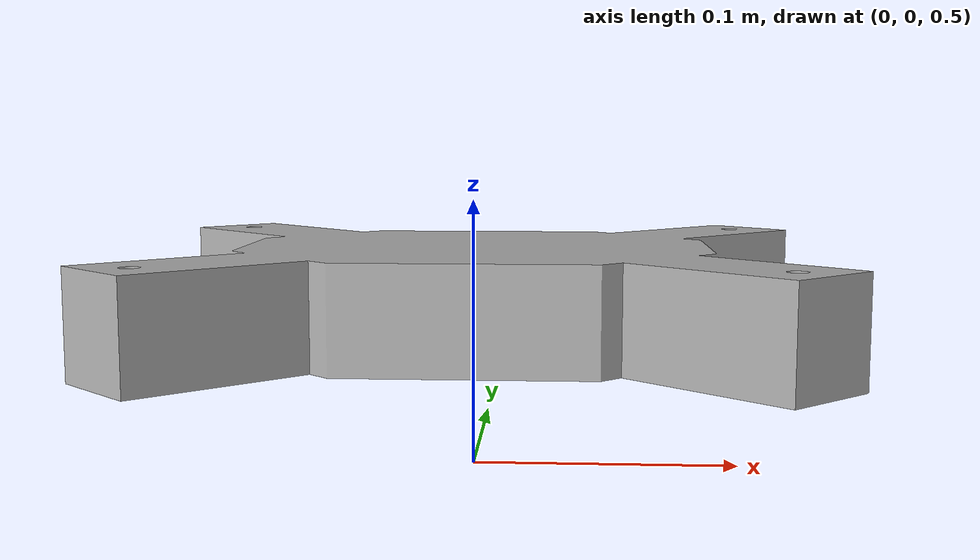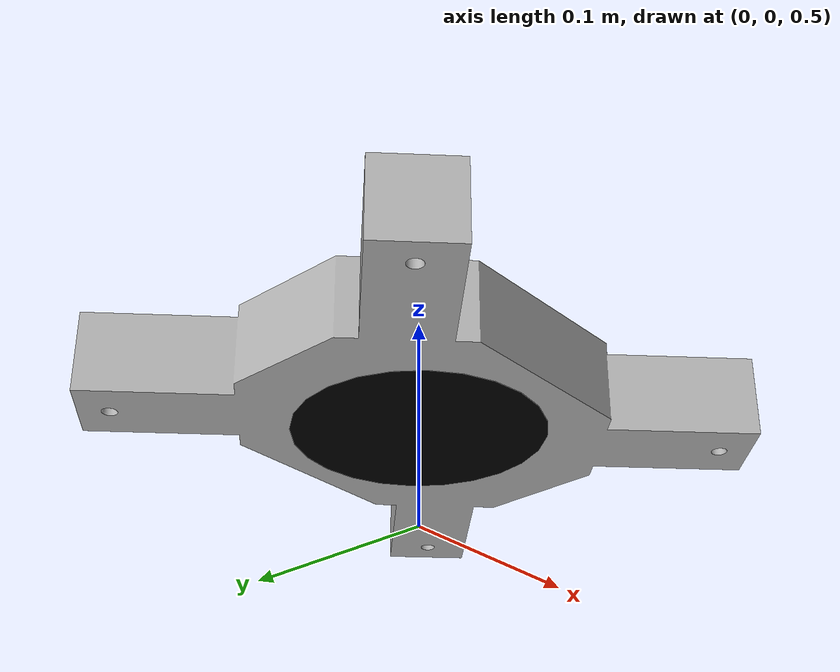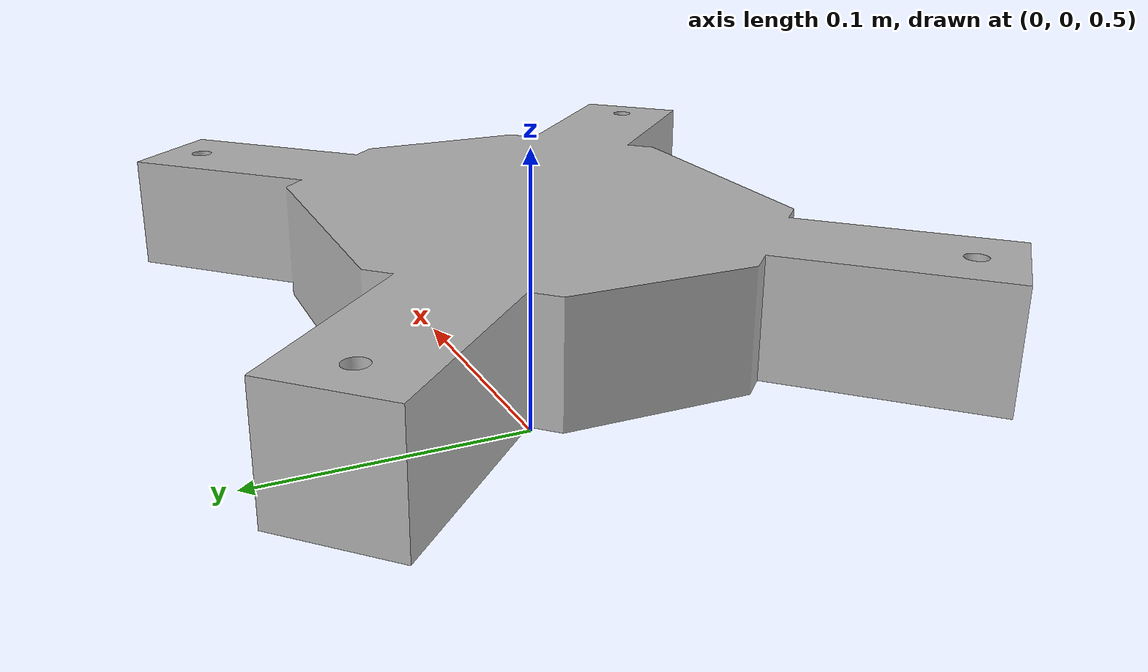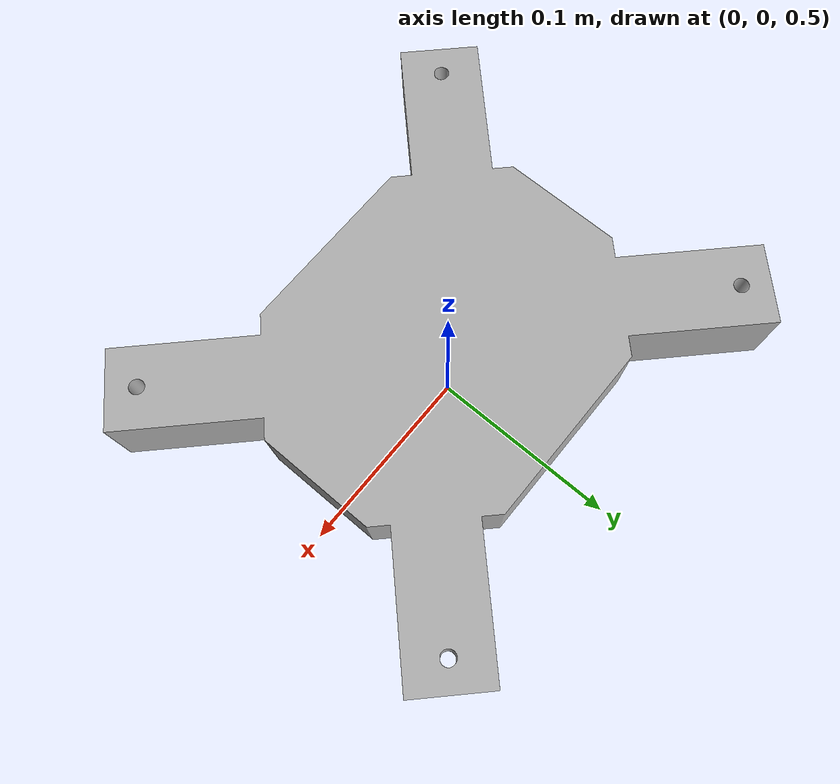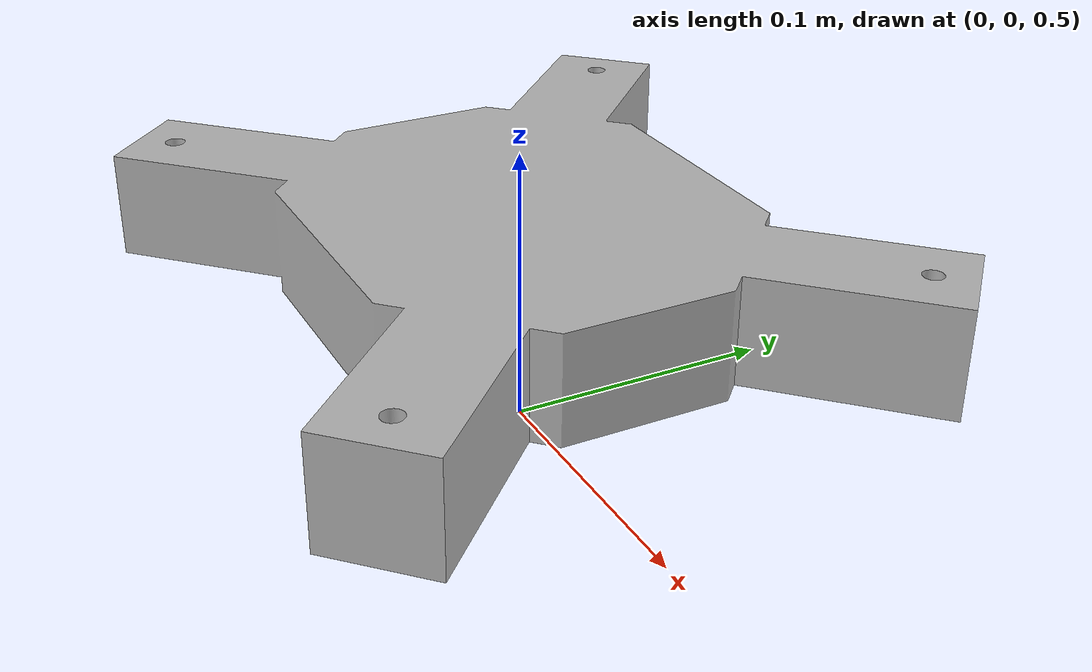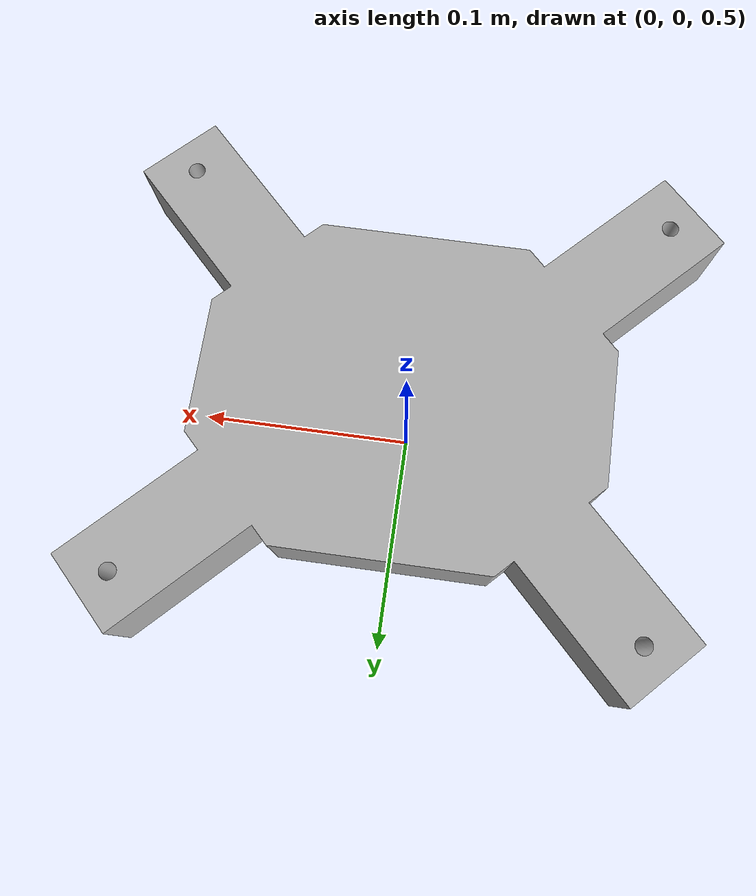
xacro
<?xml version="1.0" encoding="UTF-8" ?>
<robot xmlns:xacro="http://ros.org/wiki/xacro" name="Gecko_2">

  <!-- parameters -->
  <xacro:property name="sin45" value="0.707106781"/>

  <xacro:property name="body_cutout_x" value="0.040894"/>
  <xacro:property name="body_length_x" value="0.17145"/>
  <xacro:property name="body_length_y" value="0.1397"/>
  <xacro:property name="body_length_z" value="0.0381"/>
  <xacro:property name="bracket_length_z" value="0.003302"/>
  <xacro:property name="bracket_hole_to_end" value="0.01397"/>
  <xacro:property name="coxa_length" value="0.06858"/>
  <xacro:property name="femur_length" value="0.076454"/>
  <xacro:property name="tibia_length" value="0.171704"/>
  <xacro:property name="tarsus_length" value="0.0508"/>

  <xacro:property name="mass_body"   value="4.5"/>
  <xacro:property name="mass_femur"  value="0.078221043"/>
  <xacro:property name="mass_tibia"  value="0.1756725"/>
  <xacro:property name="mass_tarsus" value="0.0519741"/>
  <xacro:property name="mass_foot"   value="0.45"/>

  <gazebo>
    <plugin name="gazebo_ros_control" filename="libgazebo_ros_control.so">
    	<robotNamespace>/Gecko_2</robotNamespace>
    </plugin>
  </gazebo>

  <!-- Base Link -->
  <link name="base_link"/>

  <!-- Body Link -->
  <xacro:property name="body_Ixx" value="${( (1/12.0)*(mass_body)*(body_length_z*body_length_z + body_length_y*body_length_y) )}"/>
  <xacro:property name="body_Izz" value="${( (1/12.0)*(mass_body)*(body_length_x*body_length_x + body_length_y*body_length_y) )}"/>
  <xacro:property name="body_Iyy" value="${( (1/12.0)*(mass_body)*(body_length_x*body_length_x + body_length_z*body_length_z) )}"/>

  <joint name="base_joint" type="fixed">
    <parent link="base_link"/>
    <child link="body_link"/>
    <origin xyz="0.0 0.0 ${0.064+0.5}" rpy="0.0 0.0 0.0"/>
  </joint>
  <link name="body_link">
    <visual>
      <origin xyz="${-( (body_length_z/2.0)*sin45 + (coxa_length)*sin45 - (0.040894/2.0) + (body_length_x/2.0) )} ${( (body_length_z/2.0)*sin45 + (coxa_length)*sin45 - (0.040894/2.0) + (body_length_y/2.0) )} ${-body_length_z/2.0}" rpy="${pi/2.0} 0.0 0.0"/>
      <geometry>
        <mesh filename="package://gecko_2_description/meshes/body.STL" scale="0.001 0.001 0.001"/>
      </geometry>
      <material name="">
        <color rgba="0.7 0.7 0.7 1"/>
      </material>
    </visual>
    <collision>
      <origin xyz="${-( (body_length_z/2.0)*sin45 + (coxa_length)*sin45 - (0.040894/2.0) + (body_length_x/2.0) )} ${( (body_length_z/2.0)*sin45 + (coxa_length)*sin45 - (0.040894/2.0) + (body_length_y/2.0) )} ${-body_length_z/2.0}" rpy="${pi/2.0} 0.0 0.0"/>
      <geometry>
        <mesh filename="package://gecko_2_description/meshes/body.STL" scale="0.001 0.001 0.001"/>
      </geometry>
      <material name="">
        <color rgba="0.7 0.7 0.7 1"/>
      </material>
    </collision>
    <inertial>
      <origin xyz="0.0 0.0 0.0" rpy="0.0 0.0 0.0" />
      <mass value="${mass_body}"/>
      <inertia ixx="${body_Ixx}" ixy="0.0"  ixz="0.0" iyy="${body_Iyy}" iyz="0.0" izz="${body_Izz}" />
    </inertial>
  </link>
  <gazebo reference="body_link">
    <material>Gazebo/DarkGrey</material>
  </gazebo>

  <joint name="gripper_joint" type="revolute">
    <parent link="body_link" />
    <child link="vacuum_foot_RR" />
    <origin xyz="0 0 ${-(body_length_z/2.0)-(0.0001/2.0)}" rpy="0 0 0" />
    <limit effort="30" velocity="1.0" lower="0" upper="0" />
  </joint>
  <link name="vacuum_foot_RR">
    <gravity>0</gravity>
    <visual>
      <origin rpy="0 0 0" xyz="0 0 0"/>
      <geometry>
        <cylinder radius="0.05715" length="0.0001"/>
      </geometry>
      <material name="transparent">
        <color rgba="0 0 0 0"/>
      </material>
    </visual>
    <inertial>
      <origin rpy="0 0 0" xyz="0.000000 0.000000 0.000000"/>
      <mass value="0.0001"/>
      <inertia ixx="1e-08" ixy="0" ixz="0" iyy="1e-08" iyz="0" izz="1e-08"/>
    </inertial>
  </link>
  <gazebo>
    <plugin name='gazebo_ros_vacuum_gripper' filename='libgazebo_ros_vacuum_gripper.so'>
      <robotNamespace>/Gecko_2/vacuum_gripper</robotNamespace>
      <bodyName>vacuum_foot_RR</bodyName>
      <topicName>grasping</topicName>
    </plugin>
  </gazebo>

</robot>
